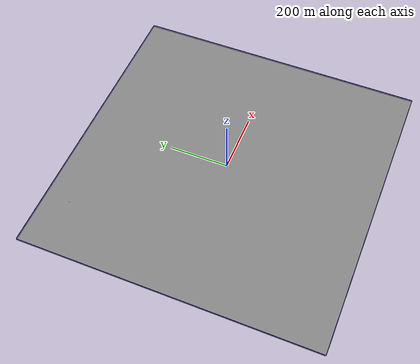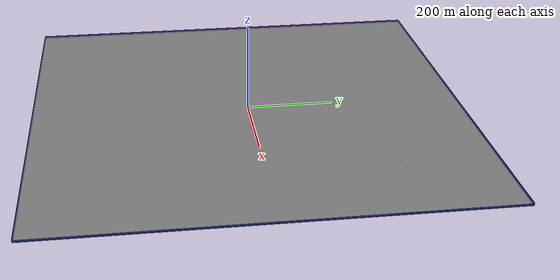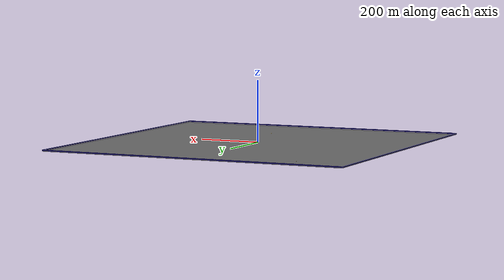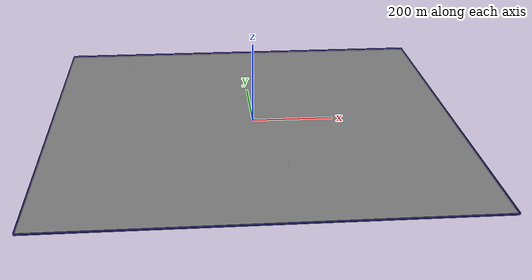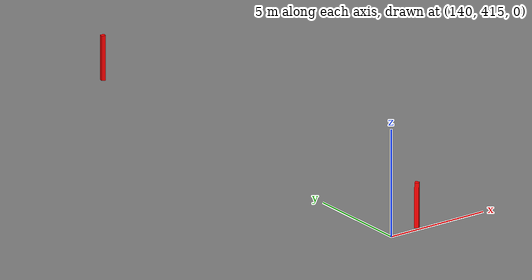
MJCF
<mujoco model="unnamed_model">
  <default>
    <default class="/" />
    <default class="border/" />
    <default class="border_1/" />
    <default class="border_2/" />
    <default class="border_3/" />
    <default class="agentplaceholder/" />
    <default class="placeholder_box/" />
    <default class="tree0/" />
    <default class="tree1/" />
    <default class="stone/" />
    <default class="stone_1/" />
  </default>
  <worldbody>
    <body name="border/">
      <body name="border/border" pos="0 501 2">
        <geom name="border/border_geom" class="border/" type="box" size="500 1 2" rgba="0.035000000000000003 0.016 0.28999999999999998 1" />
      </body>
    </body>
    <body name="border_1/">
      <body name="border_1/border" pos="0 -501 2">
        <geom name="border_1/border_geom" class="border_1/" type="box" size="500 1 2" rgba="0.035000000000000003 0.016 0.28999999999999998 1" />
      </body>
    </body>
    <body name="border_2/">
      <body name="border_2/border" pos="501 0 2">
        <geom name="border_2/border_geom" class="border_2/" type="box" size="1 500 2" rgba="0.035000000000000003 0.016 0.28999999999999998 1" />
      </body>
    </body>
    <body name="border_3/">
      <body name="border_3/border" pos="-501 0 2">
        <geom name="border_3/border_geom" class="border_3/" type="box" size="1 500 2" rgba="0.035000000000000003 0.016 0.28999999999999998 1" />
      </body>
    </body>
    <body euler="0 0 104.40282296531313" name="agentplaceholder/">
      <joint name="agentplaceholder/boxagent_freeJoint/" class="/" type="free" />
      <body name="agentplaceholder/agentplaceholder" pos="-250 0 3" euler="0 0 0">
        <geom name="agentplaceholder/boxagent_geom" class="agentplaceholder/" type="box" size="0.5 0.5 0.5" rgba="0.94899999999999995 0.74509999999999998 0.1333 1" euler="0 0 0" />
      </body>
    </body>
    <body name="placeholder_box/">
      <body name="placeholder_box/placeholder_box" pos="-318.27184999999997 415.75369999999998 0.5" euler="0 0 -97.363983376956497">
        <geom name="placeholder_box/box_geom" class="placeholder_box/" type="box" size="0.5 0.5 0.5" rgba="0.94899999999999995 0.74509999999999998 0.1333 1" euler="0 0 0" />
      </body>
    </body>
    <body name="tree0/">
      <body name="tree0/tree0" pos="141.06795 437.82670000000007 0.10000000000000001" euler="0 0 161.23503038445045">
        <geom name="tree0/tree_geom" class="tree0/" type="box" size="0.10000000000000001 0.10000000000000001 2" rgba="1 0 0 1" />
      </body>
    </body>
    <body name="tree1/">
      <body name="tree1/tree1" pos="325.00979999999998 294.84259999999995 0.10000000000000001" euler="0 0 -83.171954145071055">
        <geom name="tree1/tree_geom" class="tree1/" type="box" size="0.10000000000000001 0.10000000000000001 2" rgba="1 0 0 1" />
      </body>
    </body>
    <body name="stone/">
      <body name="stone/stone" pos="340.42970000000003 151.05830000000003 0.10000000000000001" euler="0 0 75.741113725802393">
        <geom name="stone/stone_geom" class="stone/" type="box" size="0.10000000000000001 0.10000000000000001 2" rgba="1 0 0 1" />
      </body>
    </body>
    <body name="stone_1/">
      <body name="stone_1/stone" pos="141.59899999999999 415.27060000000006 0.10000000000000001" euler="0 0 42.743749189667113">
        <geom name="stone_1/stone_geom" class="stone_1/" type="box" size="0.10000000000000001 0.10000000000000001 2" rgba="1 0 0 1" />
      </body>
    </body>
    <geom name="base_plane" class="/" type="plane" size="500 500 0.10000000000000001" />
  </worldbody>
</mujoco>
